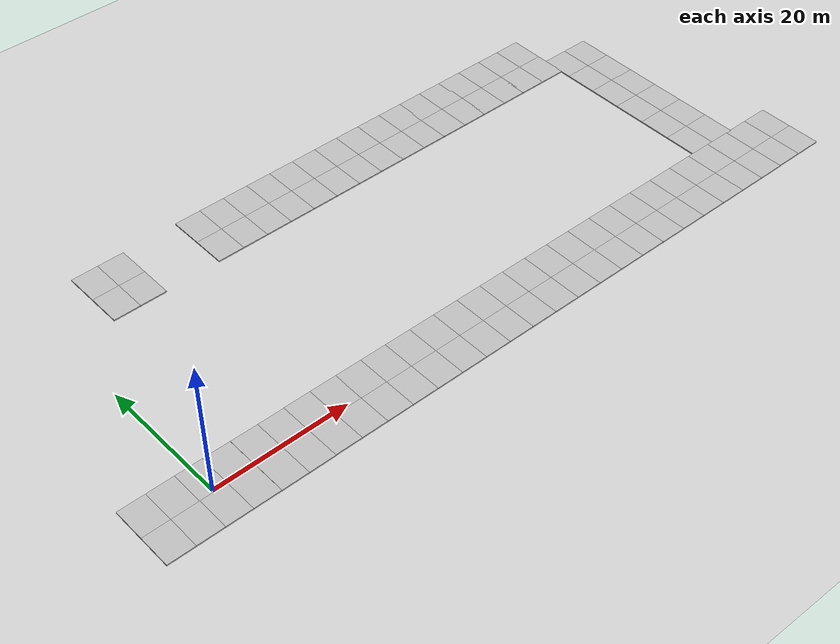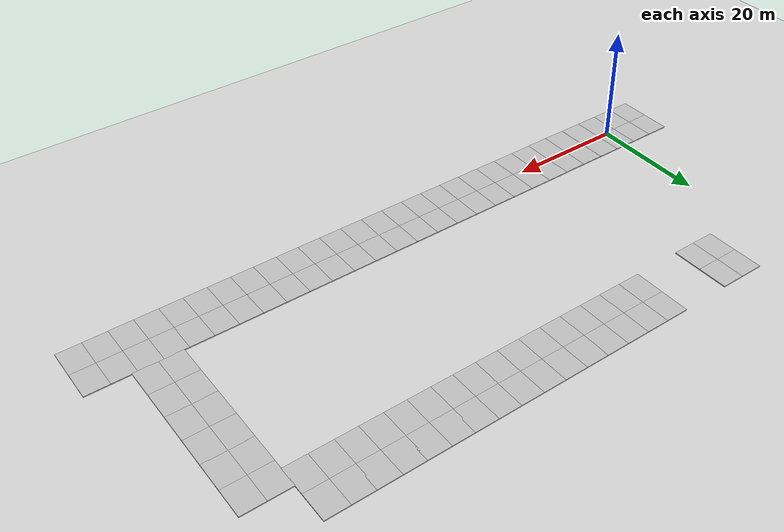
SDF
<sdf version="1.7">
 <world name="default">
  <model name="ground_plane">
   <static>1</static>
   <link name="link">
    <collision name="collision">
     <geometry><plane><normal>0 0 1</normal><size>100 100</size></plane></geometry>
     <surface>
      <contact><collide_bitmask>65535</collide_bitmask></contact>
      <friction><ode><mu>100</mu><mu2>50</mu2></ode></friction>
     </surface>
    </collision>
    <visual name="visual">
     <cast_shadows>0</cast_shadows>
     <geometry><plane><normal>0 0 1</normal><size>100 100</size></plane></geometry>
     <material>
      <script><uri>file://media/materials/scripts/gazebo.material</uri><name>Gazebo/Grey</name></script>
     </material>
    </visual>
   </link>
  </model>
  <model name="mud_box">
   <static>1</static>
   <link name="link">
    <collision name="collision"><geometry><box><size>8 10 0.2</size></box></geometry></collision>
    <visual name="visual_1">
     <pose>-2 2.5 0 0 -0 0</pose>
     <cast_shadows>0</cast_shadows>
     <geometry><box><size>4 5 0.2</size></box></geometry>
     <material>
      <script>
       <uri>model://mud_box/materials/scripts</uri>
       <uri>model://mud_box/materials/textures</uri>
       <name>vrc/mud</name>
      </script>
     </material>
    </visual>
    <visual name="visual_2">
     <pose>2 2.5 0 0 -0 0</pose>
     <cast_shadows>0</cast_shadows>
     <geometry><box><size>4 5 0.2</size></box></geometry>
     <material>
      <script>
       <uri>model://mud_box/materials/scripts</uri>
       <uri>model://mud_box/materials/textures</uri>
       <name>vrc/mud</name>
      </script>
     </material>
    </visual>
    <visual name="visual_3">
     <pose>2 -2.5 0 0 -0 0</pose>
     <cast_shadows>0</cast_shadows>
     <geometry><box><size>4 5 0.2</size></box></geometry>
     <material>
      <script>
       <uri>model://mud_box/materials/scripts</uri>
       <uri>model://mud_box/materials/textures</uri>
       <name>vrc/mud</name>
      </script>
     </material>
    </visual>
    <visual name="visual_4">
     <pose>-2 -2.5 0 0 -0 0</pose>
     <cast_shadows>0</cast_shadows>
     <geometry><box><size>4 5 0.2</size></box></geometry>
     <material>
      <script>
       <uri>model://mud_box/materials/scripts</uri>
       <uri>model://mud_box/materials/textures</uri>
       <name>vrc/mud</name>
      </script>
     </material>
    </visual>
   </link>
   <pose>-6.0472 -0.38569 0 0 -0 0</pose>
  </model>
  <model name="mud_box_0">
   <static>1</static>
   <link name="link">
    <collision name="collision"><geometry><box><size>8 10 0.2</size></box></geometry></collision>
    <visual name="visual_1">
     <pose>-2 2.5 0 0 -0 0</pose>
     <cast_shadows>0</cast_shadows>
     <geometry><box><size>4 5 0.2</size></box></geometry>
     <material>
      <script>
       <uri>model://mud_box/materials/scripts</uri>
       <uri>model://mud_box/materials/textures</uri>
       <name>vrc/mud</name>
      </script>
     </material>
    </visual>
    <visual name="visual_2">
     <pose>2 2.5 0 0 -0 0</pose>
     <cast_shadows>0</cast_shadows>
     <geometry><box><size>4 5 0.2</size></box></geometry>
     <material>
      <script>
       <uri>model://mud_box/materials/scripts</uri>
       <uri>model://mud_box/materials/textures</uri>
       <name>vrc/mud</name>
      </script>
     </material>
    </visual>
    <visual name="visual_3">
     <pose>2 -2.5 0 0 -0 0</pose>
     <cast_shadows>0</cast_shadows>
     <geometry><box><size>4 5 0.2</size></box></geometry>
     <material>
      <script>
       <uri>model://mud_box/materials/scripts</uri>
       <uri>model://mud_box/materials/textures</uri>
       <name>vrc/mud</name>
      </script>
     </material>
    </visual>
    <visual name="visual_4">
     <pose>-2 -2.5 0 0 -0 0</pose>
     <cast_shadows>0</cast_shadows>
     <geometry><box><size>4 5 0.2</size></box></geometry>
     <material>
      <script>
       <uri>model://mud_box/materials/scripts</uri>
       <uri>model://mud_box/materials/textures</uri>
       <name>vrc/mud</name>
      </script>
     </material>
    </visual>
   </link>
   <pose>1.87582 -0.385693 0 0 -0 0</pose>
  </model>
  <model name="mud_box_clone">
   <static>1</static>
   <link name="link">
    <collision name="collision"><geometry><box><size>8 10 0.2</size></box></geometry></collision>
    <visual name="visual_1">
     <pose>-2 2.5 0 0 -0 0</pose>
     <cast_shadows>0</cast_shadows>
     <geometry><box><size>4 5 0.2</size></box></geometry>
     <material>
      <script>
       <uri>model://mud_box/materials/scripts</uri>
       <uri>model://mud_box/materials/textures</uri>
       <name>vrc/mud</name>
      </script>
     </material>
    </visual>
    <visual name="visual_2">
     <pose>2 2.5 0 0 -0 0</pose>
     <cast_shadows>0</cast_shadows>
     <geometry><box><size>4 5 0.2</size></box></geometry>
     <material>
      <script>
       <uri>model://mud_box/materials/scripts</uri>
       <uri>model://mud_box/materials/textures</uri>
       <name>vrc/mud</name>
      </script>
     </material>
    </visual>
    <visual name="visual_3">
     <pose>2 -2.5 0 0 -0 0</pose>
     <cast_shadows>0</cast_shadows>
     <geometry><box><size>4 5 0.2</size></box></geometry>
     <material>
      <script>
       <uri>model://mud_box/materials/scripts</uri>
       <uri>model://mud_box/materials/textures</uri>
       <name>vrc/mud</name>
      </script>
     </material>
    </visual>
    <visual name="visual_4">
     <pose>-2 -2.5 0 0 -0 0</pose>
     <cast_shadows>0</cast_shadows>
     <geometry><box><size>4 5 0.2</size></box></geometry>
     <material>
      <script>
       <uri>model://mud_box/materials/scripts</uri>
       <uri>model://mud_box/materials/textures</uri>
       <name>vrc/mud</name>
      </script>
     </material>
    </visual>
   </link>
   <pose>9.88835 -0.403056 0 0 -0 0</pose>
  </model>
  <model name="mud_box_1">
   <static>1</static>
   <link name="link">
    <collision name="collision"><geometry><box><size>8 10 0.2</size></box></geometry></collision>
    <visual name="visual_1">
     <pose>-2 2.5 0 0 -0 0</pose>
     <cast_shadows>0</cast_shadows>
     <geometry><box><size>4 5 0.2</size></box></geometry>
     <material>
      <script>
       <uri>model://mud_box/materials/scripts</uri>
       <uri>model://mud_box/materials/textures</uri>
       <name>vrc/mud</name>
      </script>
     </material>
    </visual>
    <visual name="visual_2">
     <pose>2 2.5 0 0 -0 0</pose>
     <cast_shadows>0</cast_shadows>
     <geometry><box><size>4 5 0.2</size></box></geometry>
     <material>
      <script>
       <uri>model://mud_box/materials/scripts</uri>
       <uri>model://mud_box/materials/textures</uri>
       <name>vrc/mud</name>
      </script>
     </material>
    </visual>
    <visual name="visual_3">
     <pose>2 -2.5 0 0 -0 0</pose>
     <cast_shadows>0</cast_shadows>
     <geometry><box><size>4 5 0.2</size></box></geometry>
     <material>
      <script>
       <uri>model://mud_box/materials/scripts</uri>
       <uri>model://mud_box/materials/textures</uri>
       <name>vrc/mud</name>
      </script>
     </material>
    </visual>
    <visual name="visual_4">
     <pose>-2 -2.5 0 0 -0 0</pose>
     <cast_shadows>0</cast_shadows>
     <geometry><box><size>4 5 0.2</size></box></geometry>
     <material>
      <script>
       <uri>model://mud_box/materials/scripts</uri>
       <uri>model://mud_box/materials/textures</uri>
       <name>vrc/mud</name>
      </script>
     </material>
    </visual>
   </link>
   <pose>17.8296 -0.357157 0 0 -0 0</pose>
  </model>
  <model name="mud_box_2">
   <static>1</static>
   <link name="link">
    <collision name="collision"><geometry><box><size>8 10 0.2</size></box></geometry></collision>
    <visual name="visual_1">
     <pose>-2 2.5 0 0 -0 0</pose>
     <cast_shadows>0</cast_shadows>
     <geometry><box><size>4 5 0.2</size></box></geometry>
     <material>
      <script>
       <uri>model://mud_box/materials/scripts</uri>
       <uri>model://mud_box/materials/textures</uri>
       <name>vrc/mud</name>
      </script>
     </material>
    </visual>
    <visual name="visual_2">
     <pose>2 2.5 0 0 -0 0</pose>
     <cast_shadows>0</cast_shadows>
     <geometry><box><size>4 5 0.2</size></box></geometry>
     <material>
      <script>
       <uri>model://mud_box/materials/scripts</uri>
       <uri>model://mud_box/materials/textures</uri>
       <name>vrc/mud</name>
      </script>
     </material>
    </visual>
    <visual name="visual_3">
     <pose>2 -2.5 0 0 -0 0</pose>
     <cast_shadows>0</cast_shadows>
     <geometry><box><size>4 5 0.2</size></box></geometry>
     <material>
      <script>
       <uri>model://mud_box/materials/scripts</uri>
       <uri>model://mud_box/materials/textures</uri>
       <name>vrc/mud</name>
      </script>
     </material>
    </visual>
    <visual name="visual_4">
     <pose>-2 -2.5 0 0 -0 0</pose>
     <cast_shadows>0</cast_shadows>
     <geometry><box><size>4 5 0.2</size></box></geometry>
     <material>
      <script>
       <uri>model://mud_box/materials/scripts</uri>
       <uri>model://mud_box/materials/textures</uri>
       <name>vrc/mud</name>
      </script>
     </material>
    </visual>
   </link>
   <pose>25.7709 -0.35716 0 0 -0 0</pose>
  </model>
  <model name="mud_box_3">
   <static>1</static>
   <link name="link">
    <collision name="collision"><geometry><box><size>8 10 0.2</size></box></geometry></collision>
    <visual name="visual_1">
     <pose>-2 2.5 0 0 -0 0</pose>
     <cast_shadows>0</cast_shadows>
     <geometry><box><size>4 5 0.2</size></box></geometry>
     <material>
      <script>
       <uri>model://mud_box/materials/scripts</uri>
       <uri>model://mud_box/materials/textures</uri>
       <name>vrc/mud</name>
      </script>
     </material>
    </visual>
    <visual name="visual_2">
     <pose>2 2.5 0 0 -0 0</pose>
     <cast_shadows>0</cast_shadows>
     <geometry><box><size>4 5 0.2</size></box></geometry>
     <material>
      <script>
       <uri>model://mud_box/materials/scripts</uri>
       <uri>model://mud_box/materials/textures</uri>
       <name>vrc/mud</name>
      </script>
     </material>
    </visual>
    <visual name="visual_3">
     <pose>2 -2.5 0 0 -0 0</pose>
     <cast_shadows>0</cast_shadows>
     <geometry><box><size>4 5 0.2</size></box></geometry>
     <material>
      <script>
       <uri>model://mud_box/materials/scripts</uri>
       <uri>model://mud_box/materials/textures</uri>
       <name>vrc/mud</name>
      </script>
     </material>
    </visual>
    <visual name="visual_4">
     <pose>-2 -2.5 0 0 -0 0</pose>
     <cast_shadows>0</cast_shadows>
     <geometry><box><size>4 5 0.2</size></box></geometry>
     <material>
      <script>
       <uri>model://mud_box/materials/scripts</uri>
       <uri>model://mud_box/materials/textures</uri>
       <name>vrc/mud</name>
      </script>
     </material>
    </visual>
   </link>
   <pose>33.7582 -0.357154 0 0 -0 0</pose>
  </model>
  <model name="mud_box_4">
   <static>1</static>
   <link name="link">
    <collision name="collision"><geometry><box><size>8 10 0.2</size></box></geometry></collision>
    <visual name="visual_1">
     <pose>-2 2.5 0 0 -0 0</pose>
     <cast_shadows>0</cast_shadows>
     <geometry><box><size>4 5 0.2</size></box></geometry>
     <material>
      <script>
       <uri>model://mud_box/materials/scripts</uri>
       <uri>model://mud_box/materials/textures</uri>
       <name>vrc/mud</name>
      </script>
     </material>
    </visual>
    <visual name="visual_2">
     <pose>2 2.5 0 0 -0 0</pose>
     <cast_shadows>0</cast_shadows>
     <geometry><box><size>4 5 0.2</size></box></geometry>
     <material>
      <script>
       <uri>model://mud_box/materials/scripts</uri>
       <uri>model://mud_box/materials/textures</uri>
       <name>vrc/mud</name>
      </script>
     </material>
    </visual>
    <visual name="visual_3">
     <pose>2 -2.5 0 0 -0 0</pose>
     <cast_shadows>0</cast_shadows>
     <geometry><box><size>4 5 0.2</size></box></geometry>
     <material>
      <script>
       <uri>model://mud_box/materials/scripts</uri>
       <uri>model://mud_box/materials/textures</uri>
       <name>vrc/mud</name>
      </script>
     </material>
    </visual>
    <visual name="visual_4">
     <pose>-2 -2.5 0 0 -0 0</pose>
     <cast_shadows>0</cast_shadows>
     <geometry><box><size>4 5 0.2</size></box></geometry>
     <material>
      <script>
       <uri>model://mud_box/materials/scripts</uri>
       <uri>model://mud_box/materials/textures</uri>
       <name>vrc/mud</name>
      </script>
     </material>
    </visual>
   </link>
   <pose>41.7454 -0.357152 0 0 -0 0</pose>
  </model>
  <model name="mud_box_5">
   <static>1</static>
   <link name="link">
    <collision name="collision"><geometry><box><size>8 10 0.2</size></box></geometry></collision>
    <visual name="visual_1">
     <pose>-2 2.5 0 0 -0 0</pose>
     <cast_shadows>0</cast_shadows>
     <geometry><box><size>4 5 0.2</size></box></geometry>
     <material>
      <script>
       <uri>model://mud_box/materials/scripts</uri>
       <uri>model://mud_box/materials/textures</uri>
       <name>vrc/mud</name>
      </script>
     </material>
    </visual>
    <visual name="visual_2">
     <pose>2 2.5 0 0 -0 0</pose>
     <cast_shadows>0</cast_shadows>
     <geometry><box><size>4 5 0.2</size></box></geometry>
     <material>
      <script>
       <uri>model://mud_box/materials/scripts</uri>
       <uri>model://mud_box/materials/textures</uri>
       <name>vrc/mud</name>
      </script>
     </material>
    </visual>
    <visual name="visual_3">
     <pose>2 -2.5 0 0 -0 0</pose>
     <cast_shadows>0</cast_shadows>
     <geometry><box><size>4 5 0.2</size></box></geometry>
     <material>
      <script>
       <uri>model://mud_box/materials/scripts</uri>
       <uri>model://mud_box/materials/textures</uri>
       <name>vrc/mud</name>
      </script>
     </material>
    </visual>
    <visual name="visual_4">
     <pose>-2 -2.5 0 0 -0 0</pose>
     <cast_shadows>0</cast_shadows>
     <geometry><box><size>4 5 0.2</size></box></geometry>
     <material>
      <script>
       <uri>model://mud_box/materials/scripts</uri>
       <uri>model://mud_box/materials/textures</uri>
       <name>vrc/mud</name>
      </script>
     </material>
    </visual>
   </link>
   <pose>49.7326 -0.357155 0 0 -0 0</pose>
  </model>
  <model name="mud_box_6">
   <static>1</static>
   <link name="link">
    <collision name="collision"><geometry><box><size>8 10 0.2</size></box></geometry></collision>
    <visual name="visual_1">
     <pose>-2 2.5 0 0 -0 0</pose>
     <cast_shadows>0</cast_shadows>
     <geometry><box><size>4 5 0.2</size></box></geometry>
     <material>
      <script>
       <uri>model://mud_box/materials/scripts</uri>
       <uri>model://mud_box/materials/textures</uri>
       <name>vrc/mud</name>
      </script>
     </material>
    </visual>
    <visual name="visual_2">
     <pose>2 2.5 0 0 -0 0</pose>
     <cast_shadows>0</cast_shadows>
     <geometry><box><size>4 5 0.2</size></box></geometry>
     <material>
      <script>
       <uri>model://mud_box/materials/scripts</uri>
       <uri>model://mud_box/materials/textures</uri>
       <name>vrc/mud</name>
      </script>
     </material>
    </visual>
    <visual name="visual_3">
     <pose>2 -2.5 0 0 -0 0</pose>
     <cast_shadows>0</cast_shadows>
     <geometry><box><size>4 5 0.2</size></box></geometry>
     <material>
      <script>
       <uri>model://mud_box/materials/scripts</uri>
       <uri>model://mud_box/materials/textures</uri>
       <name>vrc/mud</name>
      </script>
     </material>
    </visual>
    <visual name="visual_4">
     <pose>-2 -2.5 0 0 -0 0</pose>
     <cast_shadows>0</cast_shadows>
     <geometry><box><size>4 5 0.2</size></box></geometry>
     <material>
      <script>
       <uri>model://mud_box/materials/scripts</uri>
       <uri>model://mud_box/materials/textures</uri>
       <name>vrc/mud</name>
      </script>
     </material>
    </visual>
   </link>
   <pose>57.7198 -0.357153 0 0 -0 0</pose>
  </model>
  <model name="mud_box_7">
   <static>1</static>
   <link name="link">
    <collision name="collision"><geometry><box><size>8 10 0.2</size></box></geometry></collision>
    <visual name="visual_1">
     <pose>-2 2.5 0 0 -0 0</pose>
     <cast_shadows>0</cast_shadows>
     <geometry><box><size>4 5 0.2</size></box></geometry>
     <material>
      <script>
       <uri>model://mud_box/materials/scripts</uri>
       <uri>model://mud_box/materials/textures</uri>
       <name>vrc/mud</name>
      </script>
     </material>
    </visual>
    <visual name="visual_2">
     <pose>2 2.5 0 0 -0 0</pose>
     <cast_shadows>0</cast_shadows>
     <geometry><box><size>4 5 0.2</size></box></geometry>
     <material>
      <script>
       <uri>model://mud_box/materials/scripts</uri>
       <uri>model://mud_box/materials/textures</uri>
       <name>vrc/mud</name>
      </script>
     </material>
    </visual>
    <visual name="visual_3">
     <pose>2 -2.5 0 0 -0 0</pose>
     <cast_shadows>0</cast_shadows>
     <geometry><box><size>4 5 0.2</size></box></geometry>
     <material>
      <script>
       <uri>model://mud_box/materials/scripts</uri>
       <uri>model://mud_box/materials/textures</uri>
       <name>vrc/mud</name>
      </script>
     </material>
    </visual>
    <visual name="visual_4">
     <pose>-2 -2.5 0 0 -0 0</pose>
     <cast_shadows>0</cast_shadows>
     <geometry><box><size>4 5 0.2</size></box></geometry>
     <material>
      <script>
       <uri>model://mud_box/materials/scripts</uri>
       <uri>model://mud_box/materials/textures</uri>
       <name>vrc/mud</name>
      </script>
     </material>
    </visual>
   </link>
   <pose>65.707 -0.357156 0 0 -0 0</pose>
  </model>
  <model name="mud_box_8">
   <static>1</static>
   <link name="link">
    <collision name="collision"><geometry><box><size>8 10 0.2</size></box></geometry></collision>
    <visual name="visual_1">
     <pose>-2 2.5 0 0 -0 0</pose>
     <cast_shadows>0</cast_shadows>
     <geometry><box><size>4 5 0.2</size></box></geometry>
     <material>
      <script>
       <uri>model://mud_box/materials/scripts</uri>
       <uri>model://mud_box/materials/textures</uri>
       <name>vrc/mud</name>
      </script>
     </material>
    </visual>
    <visual name="visual_2">
     <pose>2 2.5 0 0 -0 0</pose>
     <cast_shadows>0</cast_shadows>
     <geometry><box><size>4 5 0.2</size></box></geometry>
     <material>
      <script>
       <uri>model://mud_box/materials/scripts</uri>
       <uri>model://mud_box/materials/textures</uri>
       <name>vrc/mud</name>
      </script>
     </material>
    </visual>
    <visual name="visual_3">
     <pose>2 -2.5 0 0 -0 0</pose>
     <cast_shadows>0</cast_shadows>
     <geometry><box><size>4 5 0.2</size></box></geometry>
     <material>
      <script>
       <uri>model://mud_box/materials/scripts</uri>
       <uri>model://mud_box/materials/textures</uri>
       <name>vrc/mud</name>
      </script>
     </material>
    </visual>
    <visual name="visual_4">
     <pose>-2 -2.5 0 0 -0 0</pose>
     <cast_shadows>0</cast_shadows>
     <geometry><box><size>4 5 0.2</size></box></geometry>
     <material>
      <script>
       <uri>model://mud_box/materials/scripts</uri>
       <uri>model://mud_box/materials/textures</uri>
       <name>vrc/mud</name>
      </script>
     </material>
    </visual>
   </link>
   <pose>73.6942 -0.357155 0 0 -0 0</pose>
  </model>
  <model name="mud_box_9">
   <static>1</static>
   <link name="link">
    <collision name="collision"><geometry><box><size>8 10 0.2</size></box></geometry></collision>
    <visual name="visual_1">
     <pose>-2 2.5 0 0 -0 0</pose>
     <cast_shadows>0</cast_shadows>
     <geometry><box><size>4 5 0.2</size></box></geometry>
     <material>
      <script>
       <uri>model://mud_box/materials/scripts</uri>
       <uri>model://mud_box/materials/textures</uri>
       <name>vrc/mud</name>
      </script>
     </material>
    </visual>
    <visual name="visual_2">
     <pose>2 2.5 0 0 -0 0</pose>
     <cast_shadows>0</cast_shadows>
     <geometry><box><size>4 5 0.2</size></box></geometry>
     <material>
      <script>
       <uri>model://mud_box/materials/scripts</uri>
       <uri>model://mud_box/materials/textures</uri>
       <name>vrc/mud</name>
      </script>
     </material>
    </visual>
    <visual name="visual_3">
     <pose>2 -2.5 0 0 -0 0</pose>
     <cast_shadows>0</cast_shadows>
     <geometry><box><size>4 5 0.2</size></box></geometry>
     <material>
      <script>
       <uri>model://mud_box/materials/scripts</uri>
       <uri>model://mud_box/materials/textures</uri>
       <name>vrc/mud</name>
      </script>
     </material>
    </visual>
    <visual name="visual_4">
     <pose>-2 -2.5 0 0 -0 0</pose>
     <cast_shadows>0</cast_shadows>
     <geometry><box><size>4 5 0.2</size></box></geometry>
     <material>
      <script>
       <uri>model://mud_box/materials/scripts</uri>
       <uri>model://mud_box/materials/textures</uri>
       <name>vrc/mud</name>
      </script>
     </material>
    </visual>
   </link>
   <pose>81.6814 -0.357154 0 0 -0 0</pose>
  </model>
  <model name="mud_box_10">
   <static>1</static>
   <link name="link">
    <collision name="collision"><geometry><box><size>8 10 0.2</size></box></geometry></collision>
    <visual name="visual_1">
     <pose>-2 2.5 0 0 -0 0</pose>
     <cast_shadows>0</cast_shadows>
     <geometry><box><size>4 5 0.2</size></box></geometry>
     <material>
      <script>
       <uri>model://mud_box/materials/scripts</uri>
       <uri>model://mud_box/materials/textures</uri>
       <name>vrc/mud</name>
      </script>
     </material>
    </visual>
    <visual name="visual_2">
     <pose>2 2.5 0 0 -0 0</pose>
     <cast_shadows>0</cast_shadows>
     <geometry><box><size>4 5 0.2</size></box></geometry>
     <material>
      <script>
       <uri>model://mud_box/materials/scripts</uri>
       <uri>model://mud_box/materials/textures</uri>
       <name>vrc/mud</name>
      </script>
     </material>
    </visual>
    <visual name="visual_3">
     <pose>2 -2.5 0 0 -0 0</pose>
     <cast_shadows>0</cast_shadows>
     <geometry><box><size>4 5 0.2</size></box></geometry>
     <material>
      <script>
       <uri>model://mud_box/materials/scripts</uri>
       <uri>model://mud_box/materials/textures</uri>
       <name>vrc/mud</name>
      </script>
     </material>
    </visual>
    <visual name="visual_4">
     <pose>-2 -2.5 0 0 -0 0</pose>
     <cast_shadows>0</cast_shadows>
     <geometry><box><size>4 5 0.2</size></box></geometry>
     <material>
      <script>
       <uri>model://mud_box/materials/scripts</uri>
       <uri>model://mud_box/materials/textures</uri>
       <name>vrc/mud</name>
      </script>
     </material>
    </visual>
   </link>
   <pose>89.6227 -0.357157 0 0 -0 0</pose>
  </model>
  <model name="mud_box_11">
   <static>1</static>
   <link name="link">
    <collision name="collision"><geometry><box><size>8 10 0.2</size></box></geometry></collision>
    <visual name="visual_1">
     <pose>-2 2.5 0 0 -0 0</pose>
     <cast_shadows>0</cast_shadows>
     <geometry><box><size>4 5 0.2</size></box></geometry>
     <material>
      <script>
       <uri>model://mud_box/materials/scripts</uri>
       <uri>model://mud_box/materials/textures</uri>
       <name>vrc/mud</name>
      </script>
     </material>
    </visual>
    <visual name="visual_2">
     <pose>2 2.5 0 0 -0 0</pose>
     <cast_shadows>0</cast_shadows>
     <geometry><box><size>4 5 0.2</size></box></geometry>
     <material>
      <script>
       <uri>model://mud_box/materials/scripts</uri>
       <uri>model://mud_box/materials/textures</uri>
       <name>vrc/mud</name>
      </script>
     </material>
    </visual>
    <visual name="visual_3">
     <pose>2 -2.5 0 0 -0 0</pose>
     <cast_shadows>0</cast_shadows>
     <geometry><box><size>4 5 0.2</size></box></geometry>
     <material>
      <script>
       <uri>model://mud_box/materials/scripts</uri>
       <uri>model://mud_box/materials/textures</uri>
       <name>vrc/mud</name>
      </script>
     </material>
    </visual>
    <visual name="visual_4">
     <pose>-2 -2.5 0 0 -0 0</pose>
     <cast_shadows>0</cast_shadows>
     <geometry><box><size>4 5 0.2</size></box></geometry>
     <material>
      <script>
       <uri>model://mud_box/materials/scripts</uri>
       <uri>model://mud_box/materials/textures</uri>
       <name>vrc/mud</name>
      </script>
     </material>
    </visual>
   </link>
   <pose>97.6099 -0.311259 0 0 -0 0</pose>
  </model>
  <model name="mud_box_12">
   <static>1</static>
   <link name="link">
    <collision name="collision"><geometry><box><size>8 10 0.2</size></box></geometry></collision>
    <visual name="visual_1">
     <pose>-2 2.5 0 0 -0 0</pose>
     <cast_shadows>0</cast_shadows>
     <geometry><box><size>4 5 0.2</size></box></geometry>
     <material>
      <script>
       <uri>model://mud_box/materials/scripts</uri>
       <uri>model://mud_box/materials/textures</uri>
       <name>vrc/mud</name>
      </script>
     </material>
    </visual>
    <visual name="visual_2">
     <pose>2 2.5 0 0 -0 0</pose>
     <cast_shadows>0</cast_shadows>
     <geometry><box><size>4 5 0.2</size></box></geometry>
     <material>
      <script>
       <uri>model://mud_box/materials/scripts</uri>
       <uri>model://mud_box/materials/textures</uri>
       <name>vrc/mud</name>
      </script>
     </material>
    </visual>
    <visual name="visual_3">
     <pose>2 -2.5 0 0 -0 0</pose>
     <cast_shadows>0</cast_shadows>
     <geometry><box><size>4 5 0.2</size></box></geometry>
     <material>
      <script>
       <uri>model://mud_box/materials/scripts</uri>
       <uri>model://mud_box/materials/textures</uri>
       <name>vrc/mud</name>
      </script>
     </material>
    </visual>
    <visual name="visual_4">
     <pose>-2 -2.5 0 0 -0 0</pose>
     <cast_shadows>0</cast_shadows>
     <geometry><box><size>4 5 0.2</size></box></geometry>
     <material>
      <script>
       <uri>model://mud_box/materials/scripts</uri>
       <uri>model://mud_box/materials/textures</uri>
       <name>vrc/mud</name>
      </script>
     </material>
    </visual>
   </link>
   <pose>90.4949 9.55798 0 0 -0 0</pose>
  </model>
  <model name="mud_box_13">
   <static>1</static>
   <link name="link">
    <collision name="collision"><geometry><box><size>8 10 0.2</size></box></geometry></collision>
    <visual name="visual_1">
     <pose>-2 2.5 0 0 -0 0</pose>
     <cast_shadows>0</cast_shadows>
     <geometry><box><size>4 5 0.2</size></box></geometry>
     <material>
      <script>
       <uri>model://mud_box/materials/scripts</uri>
       <uri>model://mud_box/materials/textures</uri>
       <name>vrc/mud</name>
      </script>
     </material>
    </visual>
    <visual name="visual_2">
     <pose>2 2.5 0 0 -0 0</pose>
     <cast_shadows>0</cast_shadows>
     <geometry><box><size>4 5 0.2</size></box></geometry>
     <material>
      <script>
       <uri>model://mud_box/materials/scripts</uri>
       <uri>model://mud_box/materials/textures</uri>
       <name>vrc/mud</name>
      </script>
     </material>
    </visual>
    <visual name="visual_3">
     <pose>2 -2.5 0 0 -0 0</pose>
     <cast_shadows>0</cast_shadows>
     <geometry><box><size>4 5 0.2</size></box></geometry>
     <material>
      <script>
       <uri>model://mud_box/materials/scripts</uri>
       <uri>model://mud_box/materials/textures</uri>
       <name>vrc/mud</name>
      </script>
     </material>
    </visual>
    <visual name="visual_4">
     <pose>-2 -2.5 0 0 -0 0</pose>
     <cast_shadows>0</cast_shadows>
     <geometry><box><size>4 5 0.2</size></box></geometry>
     <material>
      <script>
       <uri>model://mud_box/materials/scripts</uri>
       <uri>model://mud_box/materials/textures</uri>
       <name>vrc/mud</name>
      </script>
     </material>
    </visual>
   </link>
   <pose>90.4949 19.519 0 0 -0 0</pose>
  </model>
  <model name="mud_box_14">
   <static>1</static>
   <link name="link">
    <collision name="collision"><geometry><box><size>8 10 0.2</size></box></geometry></collision>
    <visual name="visual_1">
     <pose>-2 2.5 0 0 -0 0</pose>
     <cast_shadows>0</cast_shadows>
     <geometry><box><size>4 5 0.2</size></box></geometry>
     <material>
      <script>
       <uri>model://mud_box/materials/scripts</uri>
       <uri>model://mud_box/materials/textures</uri>
       <name>vrc/mud</name>
      </script>
     </material>
    </visual>
    <visual name="visual_2">
     <pose>2 2.5 0 0 -0 0</pose>
     <cast_shadows>0</cast_shadows>
     <geometry><box><size>4 5 0.2</size></box></geometry>
     <material>
      <script>
       <uri>model://mud_box/materials/scripts</uri>
       <uri>model://mud_box/materials/textures</uri>
       <name>vrc/mud</name>
      </script>
     </material>
    </visual>
    <visual name="visual_3">
     <pose>2 -2.5 0 0 -0 0</pose>
     <cast_shadows>0</cast_shadows>
     <geometry><box><size>4 5 0.2</size></box></geometry>
     <material>
      <script>
       <uri>model://mud_box/materials/scripts</uri>
       <uri>model://mud_box/materials/textures</uri>
       <name>vrc/mud</name>
      </script>
     </material>
    </visual>
    <visual name="visual_4">
     <pose>-2 -2.5 0 0 -0 0</pose>
     <cast_shadows>0</cast_shadows>
     <geometry><box><size>4 5 0.2</size></box></geometry>
     <material>
      <script>
       <uri>model://mud_box/materials/scripts</uri>
       <uri>model://mud_box/materials/textures</uri>
       <name>vrc/mud</name>
      </script>
     </material>
    </visual>
   </link>
   <pose>90.4925 29.4514 0 0 -0 0</pose>
  </model>
  <model name="mud_box_66">
   <static>1</static>
   <link name="link">
    <collision name="collision"><geometry><box><size>8 10 0.2</size></box></geometry></collision>
    <visual name="visual_1">
     <pose>-2 2.5 0 0 -0 0</pose>
     <cast_shadows>0</cast_shadows>
     <geometry><box><size>4 5 0.2</size></box></geometry>
     <material>
      <script>
       <uri>model://mud_box/materials/scripts</uri>
       <uri>model://mud_box/materials/textures</uri>
       <name>vrc/mud</name>
      </script>
     </material>
    </visual>
    <visual name="visual_2">
     <pose>2 2.5 0 0 -0 0</pose>
     <cast_shadows>0</cast_shadows>
     <geometry><box><size>4 5 0.2</size></box></geometry>
     <material>
      <script>
       <uri>model://mud_box/materials/scripts</uri>
       <uri>model://mud_box/materials/textures</uri>
       <name>vrc/mud</name>
      </script>
     </material>
    </visual>
    <visual name="visual_3">
     <pose>2 -2.5 0 0 -0 0</pose>
     <cast_shadows>0</cast_shadows>
     <geometry><box><size>4 5 0.2</size></box></geometry>
     <material>
      <script>
       <uri>model://mud_box/materials/scripts</uri>
       <uri>model://mud_box/materials/textures</uri>
       <name>vrc/mud</name>
      </script>
     </material>
    </visual>
    <visual name="visual_4">
     <pose>-2 -2.5 0 0 -0 0</pose>
     <cast_shadows>0</cast_shadows>
     <geometry><box><size>4 5 0.2</size></box></geometry>
     <material>
      <script>
       <uri>model://mud_box/materials/scripts</uri>
       <uri>model://mud_box/materials/textures</uri>
       <name>vrc/mud</name>
      </script>
     </material>
    </visual>
   </link>
   <pose>82.5696 36.0673 0 0 -0 0</pose>
  </model>
  <model name="mud_box_67">
   <static>1</static>
   <link name="link">
    <collision name="collision"><geometry><box><size>8 10 0.2</size></box></geometry></collision>
    <visual name="visual_1">
     <pose>-2 2.5 0 0 -0 0</pose>
     <cast_shadows>0</cast_shadows>
     <geometry><box><size>4 5 0.2</size></box></geometry>
     <material>
      <script>
       <uri>model://mud_box/materials/scripts</uri>
       <uri>model://mud_box/materials/textures</uri>
       <name>vrc/mud</name>
      </script>
     </material>
    </visual>
    <visual name="visual_2">
     <pose>2 2.5 0 0 -0 0</pose>
     <cast_shadows>0</cast_shadows>
     <geometry><box><size>4 5 0.2</size></box></geometry>
     <material>
      <script>
       <uri>model://mud_box/materials/scripts</uri>
       <uri>model://mud_box/materials/textures</uri>
       <name>vrc/mud</name>
      </script>
     </material>
    </visual>
    <visual name="visual_3">
     <pose>2 -2.5 0 0 -0 0</pose>
     <cast_shadows>0</cast_shadows>
     <geometry><box><size>4 5 0.2</size></box></geometry>
     <material>
      <script>
       <uri>model://mud_box/materials/scripts</uri>
       <uri>model://mud_box/materials/textures</uri>
       <name>vrc/mud</name>
      </script>
     </material>
    </visual>
    <visual name="visual_4">
     <pose>-2 -2.5 0 0 -0 0</pose>
     <cast_shadows>0</cast_shadows>
     <geometry><box><size>4 5 0.2</size></box></geometry>
     <material>
      <script>
       <uri>model://mud_box/materials/scripts</uri>
       <uri>model://mud_box/materials/textures</uri>
       <name>vrc/mud</name>
      </script>
     </material>
    </visual>
   </link>
   <pose>74.7896 36.0673 0 0 -0 0</pose>
  </model>
  <model name="mud_box_68">
   <static>1</static>
   <link name="link">
    <collision name="collision"><geometry><box><size>8 10 0.2</size></box></geometry></collision>
    <visual name="visual_1">
     <pose>-2 2.5 0 0 -0 0</pose>
     <cast_shadows>0</cast_shadows>
     <geometry><box><size>4 5 0.2</size></box></geometry>
     <material>
      <script>
       <uri>model://mud_box/materials/scripts</uri>
       <uri>model://mud_box/materials/textures</uri>
       <name>vrc/mud</name>
      </script>
     </material>
    </visual>
    <visual name="visual_2">
     <pose>2 2.5 0 0 -0 0</pose>
     <cast_shadows>0</cast_shadows>
     <geometry><box><size>4 5 0.2</size></box></geometry>
     <material>
      <script>
       <uri>model://mud_box/materials/scripts</uri>
       <uri>model://mud_box/materials/textures</uri>
       <name>vrc/mud</name>
      </script>
     </material>
    </visual>
    <visual name="visual_3">
     <pose>2 -2.5 0 0 -0 0</pose>
     <cast_shadows>0</cast_shadows>
     <geometry><box><size>4 5 0.2</size></box></geometry>
     <material>
      <script>
       <uri>model://mud_box/materials/scripts</uri>
       <uri>model://mud_box/materials/textures</uri>
       <name>vrc/mud</name>
      </script>
     </material>
    </visual>
    <visual name="visual_4">
     <pose>-2 -2.5 0 0 -0 0</pose>
     <cast_shadows>0</cast_shadows>
     <geometry><box><size>4 5 0.2</size></box></geometry>
     <material>
      <script>
       <uri>model://mud_box/materials/scripts</uri>
       <uri>model://mud_box/materials/textures</uri>
       <name>vrc/mud</name>
      </script>
     </material>
    </visual>
   </link>
   <pose>67.0097 36.0673 0 0 -0 0</pose>
  </model>
  <model name="mud_box_69">
   <static>1</static>
   <link name="link">
    <collision name="collision"><geometry><box><size>8 10 0.2</size></box></geometry></collision>
    <visual name="visual_1">
     <pose>-2 2.5 0 0 -0 0</pose>
     <cast_shadows>0</cast_shadows>
     <geometry><box><size>4 5 0.2</size></box></geometry>
     <material>
      <script>
       <uri>model://mud_box/materials/scripts</uri>
       <uri>model://mud_box/materials/textures</uri>
       <name>vrc/mud</name>
      </script>
     </material>
    </visual>
    <visual name="visual_2">
     <pose>2 2.5 0 0 -0 0</pose>
     <cast_shadows>0</cast_shadows>
     <geometry><box><size>4 5 0.2</size></box></geometry>
     <material>
      <script>
       <uri>model://mud_box/materials/scripts</uri>
       <uri>model://mud_box/materials/textures</uri>
       <name>vrc/mud</name>
      </script>
     </material>
    </visual>
    <visual name="visual_3">
     <pose>2 -2.5 0 0 -0 0</pose>
     <cast_shadows>0</cast_shadows>
     <geometry><box><size>4 5 0.2</size></box></geometry>
     <material>
      <script>
       <uri>model://mud_box/materials/scripts</uri>
       <uri>model://mud_box/materials/textures</uri>
       <name>vrc/mud</name>
      </script>
     </material>
    </visual>
    <visual name="visual_4">
     <pose>-2 -2.5 0 0 -0 0</pose>
     <cast_shadows>0</cast_shadows>
     <geometry><box><size>4 5 0.2</size></box></geometry>
     <material>
      <script>
       <uri>model://mud_box/materials/scripts</uri>
       <uri>model://mud_box/materials/textures</uri>
       <name>vrc/mud</name>
      </script>
     </material>
    </visual>
   </link>
   <pose>59.2297 36.0673 0 0 -0 0</pose>
  </model>
  <model name="mud_box_70">
   <static>1</static>
   <link name="link">
    <collision name="collision"><geometry><box><size>8 10 0.2</size></box></geometry></collision>
    <visual name="visual_1">
     <pose>-2 2.5 0 0 -0 0</pose>
     <cast_shadows>0</cast_shadows>
     <geometry><box><size>4 5 0.2</size></box></geometry>
     <material>
      <script>
       <uri>model://mud_box/materials/scripts</uri>
       <uri>model://mud_box/materials/textures</uri>
       <name>vrc/mud</name>
      </script>
     </material>
    </visual>
    <visual name="visual_2">
     <pose>2 2.5 0 0 -0 0</pose>
     <cast_shadows>0</cast_shadows>
     <geometry><box><size>4 5 0.2</size></box></geometry>
     <material>
      <script>
       <uri>model://mud_box/materials/scripts</uri>
       <uri>model://mud_box/materials/textures</uri>
       <name>vrc/mud</name>
      </script>
     </material>
    </visual>
    <visual name="visual_3">
     <pose>2 -2.5 0 0 -0 0</pose>
     <cast_shadows>0</cast_shadows>
     <geometry><box><size>4 5 0.2</size></box></geometry>
     <material>
      <script>
       <uri>model://mud_box/materials/scripts</uri>
       <uri>model://mud_box/materials/textures</uri>
       <name>vrc/mud</name>
      </script>
     </material>
    </visual>
    <visual name="visual_4">
     <pose>-2 -2.5 0 0 -0 0</pose>
     <cast_shadows>0</cast_shadows>
     <geometry><box><size>4 5 0.2</size></box></geometry>
     <material>
      <script>
       <uri>model://mud_box/materials/scripts</uri>
       <uri>model://mud_box/materials/textures</uri>
       <name>vrc/mud</name>
      </script>
     </material>
    </visual>
   </link>
   <pose>51.3029 36.0673 0 0 -0 0</pose>
  </model>
  <model name="mud_box_71">
   <static>1</static>
   <link name="link">
    <collision name="collision"><geometry><box><size>8 10 0.2</size></box></geometry></collision>
    <visual name="visual_1">
     <pose>-2 2.5 0 0 -0 0</pose>
     <cast_shadows>0</cast_shadows>
     <geometry><box><size>4 5 0.2</size></box></geometry>
     <material>
      <script>
       <uri>model://mud_box/materials/scripts</uri>
       <uri>model://mud_box/materials/textures</uri>
       <name>vrc/mud</name>
      </script>
     </material>
    </visual>
    <visual name="visual_2">
     <pose>2 2.5 0 0 -0 0</pose>
     <cast_shadows>0</cast_shadows>
     <geometry><box><size>4 5 0.2</size></box></geometry>
     <material>
      <script>
       <uri>model://mud_box/materials/scripts</uri>
       <uri>model://mud_box/materials/textures</uri>
       <name>vrc/mud</name>
      </script>
     </material>
    </visual>
    <visual name="visual_3">
     <pose>2 -2.5 0 0 -0 0</pose>
     <cast_shadows>0</cast_shadows>
     <geometry><box><size>4 5 0.2</size></box></geometry>
     <material>
      <script>
       <uri>model://mud_box/materials/scripts</uri>
       <uri>model://mud_box/materials/textures</uri>
       <name>vrc/mud</name>
      </script>
     </material>
    </visual>
    <visual name="visual_4">
     <pose>-2 -2.5 0 0 -0 0</pose>
     <cast_shadows>0</cast_shadows>
     <geometry><box><size>4 5 0.2</size></box></geometry>
     <material>
      <script>
       <uri>model://mud_box/materials/scripts</uri>
       <uri>model://mud_box/materials/textures</uri>
       <name>vrc/mud</name>
      </script>
     </material>
    </visual>
   </link>
   <pose>43.3761 36.0673 0 0 -0 0</pose>
  </model>
  <model name="mud_box_72">
   <static>1</static>
   <link name="link">
    <collision name="collision"><geometry><box><size>8 10 0.2</size></box></geometry></collision>
    <visual name="visual_1">
     <pose>-2 2.5 0 0 -0 0</pose>
     <cast_shadows>0</cast_shadows>
     <geometry><box><size>4 5 0.2</size></box></geometry>
     <material>
      <script>
       <uri>model://mud_box/materials/scripts</uri>
       <uri>model://mud_box/materials/textures</uri>
       <name>vrc/mud</name>
      </script>
     </material>
    </visual>
    <visual name="visual_2">
     <pose>2 2.5 0 0 -0 0</pose>
     <cast_shadows>0</cast_shadows>
     <geometry><box><size>4 5 0.2</size></box></geometry>
     <material>
      <script>
       <uri>model://mud_box/materials/scripts</uri>
       <uri>model://mud_box/materials/textures</uri>
       <name>vrc/mud</name>
      </script>
     </material>
    </visual>
    <visual name="visual_3">
     <pose>2 -2.5 0 0 -0 0</pose>
     <cast_shadows>0</cast_shadows>
     <geometry><box><size>4 5 0.2</size></box></geometry>
     <material>
      <script>
       <uri>model://mud_box/materials/scripts</uri>
       <uri>model://mud_box/materials/textures</uri>
       <name>vrc/mud</name>
      </script>
     </material>
    </visual>
    <visual name="visual_4">
     <pose>-2 -2.5 0 0 -0 0</pose>
     <cast_shadows>0</cast_shadows>
     <geometry><box><size>4 5 0.2</size></box></geometry>
     <material>
      <script>
       <uri>model://mud_box/materials/scripts</uri>
       <uri>model://mud_box/materials/textures</uri>
       <name>vrc/mud</name>
      </script>
     </material>
    </visual>
   </link>
   <pose>35.4493 36.0673 0 0 -0 0</pose>
  </model>
  <model name="mud_box_73">
   <static>1</static>
   <link name="link">
    <collision name="collision"><geometry><box><size>8 10 0.2</size></box></geometry></collision>
    <visual name="visual_1">
     <pose>-2 2.5 0 0 -0 0</pose>
     <cast_shadows>0</cast_shadows>
     <geometry><box><size>4 5 0.2</size></box></geometry>
     <material>
      <script>
       <uri>model://mud_box/materials/scripts</uri>
       <uri>model://mud_box/materials/textures</uri>
       <name>vrc/mud</name>
      </script>
     </material>
    </visual>
    <visual name="visual_2">
     <pose>2 2.5 0 0 -0 0</pose>
     <cast_shadows>0</cast_shadows>
     <geometry><box><size>4 5 0.2</size></box></geometry>
     <material>
      <script>
       <uri>model://mud_box/materials/scripts</uri>
       <uri>model://mud_box/materials/textures</uri>
       <name>vrc/mud</name>
      </script>
     </material>
    </visual>
    <visual name="visual_3">
     <pose>2 -2.5 0 0 -0 0</pose>
     <cast_shadows>0</cast_shadows>
     <geometry><box><size>4 5 0.2</size></box></geometry>
     <material>
      <script>
       <uri>model://mud_box/materials/scripts</uri>
       <uri>model://mud_box/materials/textures</uri>
       <name>vrc/mud</name>
      </script>
     </material>
    </visual>
    <visual name="visual_4">
     <pose>-2 -2.5 0 0 -0 0</pose>
     <cast_shadows>0</cast_shadows>
     <geometry><box><size>4 5 0.2</size></box></geometry>
     <material>
      <script>
       <uri>model://mud_box/materials/scripts</uri>
       <uri>model://mud_box/materials/textures</uri>
       <name>vrc/mud</name>
      </script>
     </material>
    </visual>
   </link>
   <pose>27.5225 36.0673 0 0 -0 0</pose>
  </model>
  <model name="mud_box_76">
   <static>1</static>
   <link name="link">
    <collision name="collision"><geometry><box><size>8 10 0.2</size></box></geometry></collision>
    <visual name="visual_1">
     <pose>-2 2.5 0 0 -0 0</pose>
     <cast_shadows>0</cast_shadows>
     <geometry><box><size>4 5 0.2</size></box></geometry>
     <material>
      <script>
       <uri>model://mud_box/materials/scripts</uri>
       <uri>model://mud_box/materials/textures</uri>
       <name>vrc/mud</name>
      </script>
     </material>
    </visual>
    <visual name="visual_2">
     <pose>2 2.5 0 0 -0 0</pose>
     <cast_shadows>0</cast_shadows>
     <geometry><box><size>4 5 0.2</size></box></geometry>
     <material>
      <script>
       <uri>model://mud_box/materials/scripts</uri>
       <uri>model://mud_box/materials/textures</uri>
       <name>vrc/mud</name>
      </script>
     </material>
    </visual>
    <visual name="visual_3">
     <pose>2 -2.5 0 0 -0 0</pose>
     <cast_shadows>0</cast_shadows>
     <geometry><box><size>4 5 0.2</size></box></geometry>
     <material>
      <script>
       <uri>model://mud_box/materials/scripts</uri>
       <uri>model://mud_box/materials/textures</uri>
       <name>vrc/mud</name>
      </script>
     </material>
    </visual>
    <visual name="visual_4">
     <pose>-2 -2.5 0 0 -0 0</pose>
     <cast_shadows>0</cast_shadows>
     <geometry><box><size>4 5 0.2</size></box></geometry>
     <material>
      <script>
       <uri>model://mud_box/materials/scripts</uri>
       <uri>model://mud_box/materials/textures</uri>
       <name>vrc/mud</name>
      </script>
     </material>
    </visual>
   </link>
   <pose>11.0818 35.9205 0 0 -0 0</pose>
  </model>
 </world>
</sdf>
